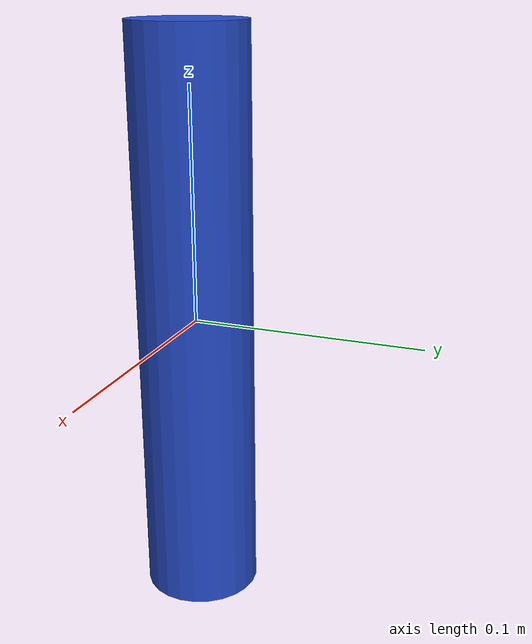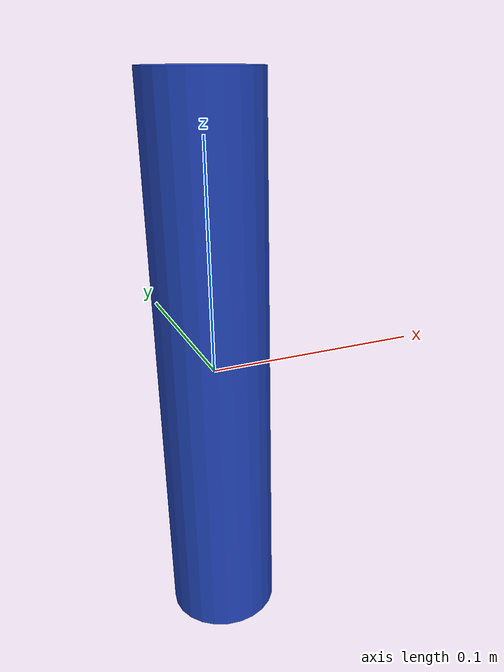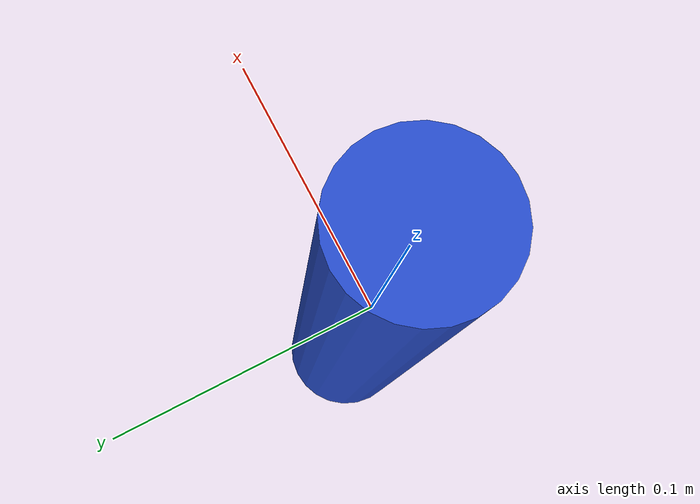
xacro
<?xml version="1.0" ?>
<robot xmlns:xacro="http://ros.org/wiki/xacro">

    <property name="prefix" value="" />

	<link name="${prefix}object_link">
            <visual>
                <!--origin xyz="0.3 -0.3 0.555" rpy="0 0 0"/-->
                <origin xyz="0 0 0" rpy="0 0 0"/>
                <geometry name="${prefix}object_link_visual_geom">
                    <cylinder length="0.25" radius="0.025"/>
                </geometry>
            </visual>
            <collision>
                <!--origin xyz="0.3 -0.3 0.555" rpy="0 0 0"/-->
                <origin xyz="0 0 0" rpy="0 0 0"/>
                <geometry name="${prefix}object_link_coll_geom">
                    <cylinder length="0.25" radius="0.025"/>
                </geometry>
            </collision>
    	    <inertial>
    		<mass value="0.1" />:
    		<inertia ixx="0.1" iyy="0.1" izz="0.1" ixy="0" ixz="0" iyz="0" />
    	    </inertial>
        </link>

    	<gazebo reference="${prefix}object_link">
	   <static>true</static>
	   <material>Gazebo/Blue</material>
	   <selfCollide>true</selfCollide>
   	   <turnGravityOff>false</turnGravityOff>
  	</gazebo>

</robot>
